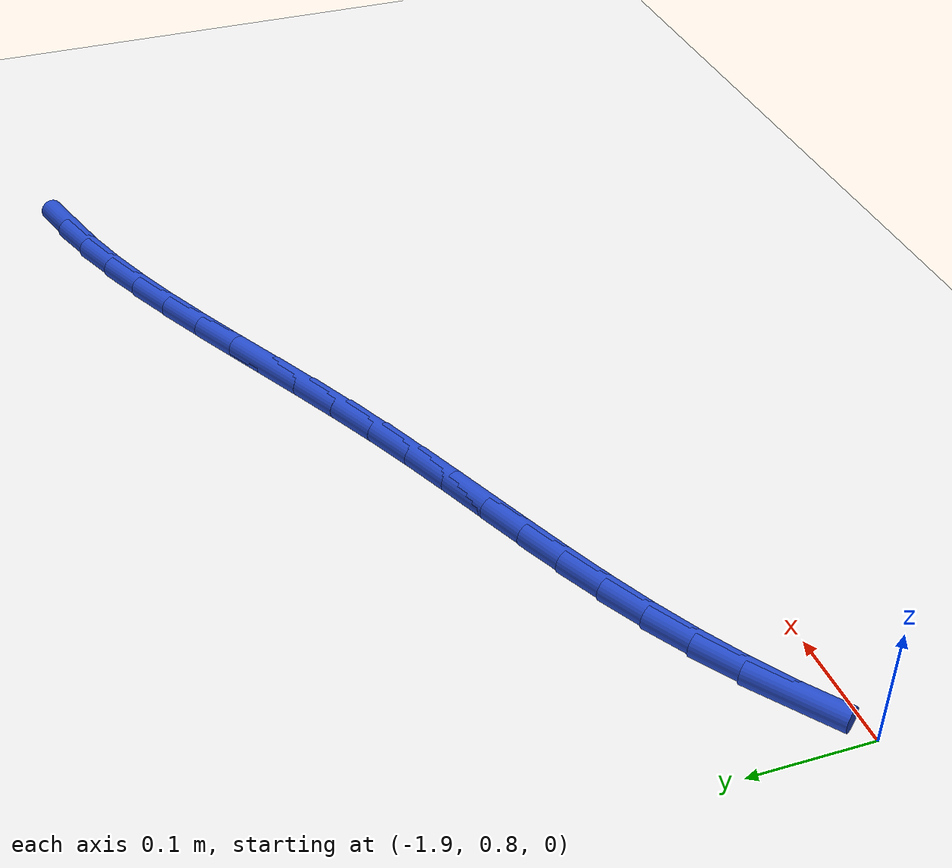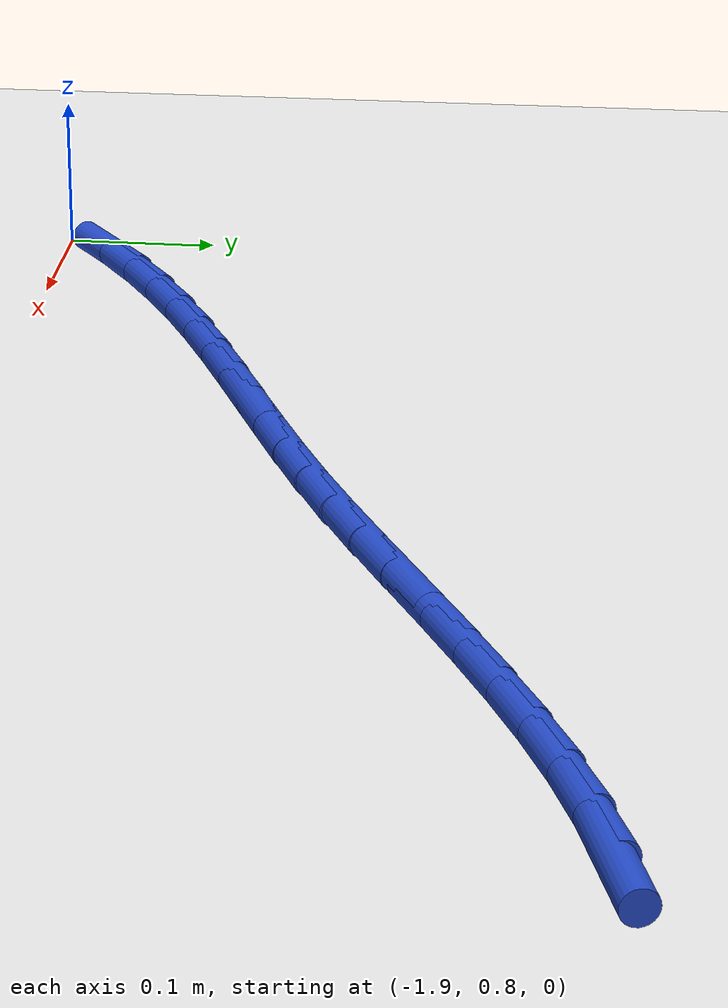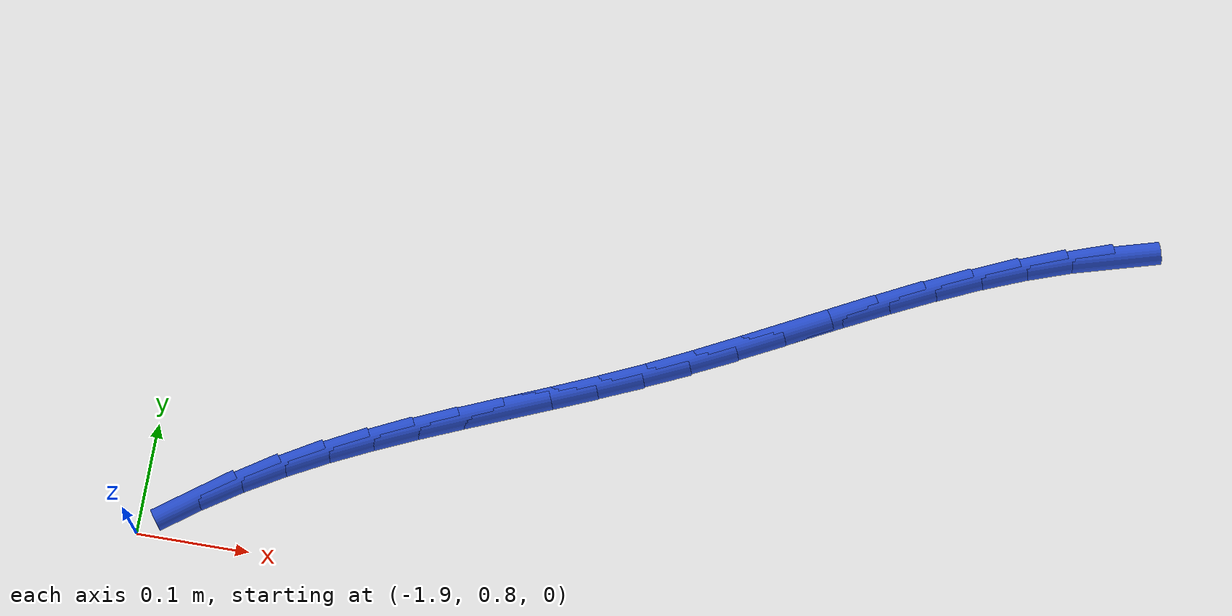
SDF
<sdf version="1.6">
 <world name="default">
  <model name="ground_plane">
   <static>1</static>
   <link name="link">
    <collision name="collision">
     <geometry><plane><normal>0 0 1</normal><size>100 100</size></plane></geometry>
     <surface><friction><ode><mu>100</mu><mu2>50</mu2></ode></friction></surface>
    </collision>
    <visual name="visual">
     <cast_shadows>0</cast_shadows>
     <geometry><plane><normal>0 0 1</normal><size>100 100</size></plane></geometry>
     <material>
      <script><uri>file://media/materials/scripts/gazebo.material</uri><name>Gazebo/WhiteGlow</name></script>
     </material>
    </visual>
   </link>
  </model>
  <model name="line">
   <link name="link_43">
    <pose>-1.0897689102322456 1.188015829185128 0.01 0 1.57 0.27014667882515564</pose>
    <collision name="collision">
     <geometry><cylinder><radius>0.01</radius><length>0.08</length></cylinder></geometry>
    </collision>
    <visual name="visual">
     <material>
      <script><name>Gazebo/Blue</name><uri>file://media/materials/scripts/gazebo.material</uri></script>
     </material>
     <geometry><cylinder><radius>0.01</radius><length>0.08</length></cylinder></geometry>
    </visual>
   </link>
   <link name="link_44">
    <pose>-1.1289754488203216 1.1771589091504442 0.01 0 1.57 0.33185288801770346</pose>
    <collision name="collision">
     <geometry><cylinder><radius>0.01</radius><length>0.08</length></cylinder></geometry>
    </collision>
    <visual name="visual">
     <material>
      <script><name>Gazebo/Blue</name><uri>file://media/materials/scripts/gazebo.material</uri></script>
     </material>
     <geometry><cylinder><radius>0.01</radius><length>0.08</length></cylinder></geometry>
    </visual>
   </link>
   <link name="link_45">
    <pose>-1.1683768165419062 1.1635813373308075 0.01 0 1.57 0.3809390599780705</pose>
    <collision name="collision">
     <geometry><cylinder><radius>0.01</radius><length>0.08</length></cylinder></geometry>
    </collision>
    <visual name="visual">
     <material>
      <script><name>Gazebo/Blue</name><uri>file://media/materials/scripts/gazebo.material</uri></script>
     </material>
     <geometry><cylinder><radius>0.01</radius><length>0.08</length></cylinder></geometry>
    </visual>
   </link>
   <link name="link_46">
    <pose>-1.2079223011146543 1.1477432917064916 0.01 0 1.57 0.41866784693471476</pose>
    <collision name="collision">
     <geometry><cylinder><radius>0.01</radius><length>0.08</length></cylinder></geometry>
    </collision>
    <visual name="visual">
     <material>
      <script><name>Gazebo/Blue</name><uri>file://media/materials/scripts/gazebo.material</uri></script>
     </material>
     <geometry><cylinder><radius>0.01</radius><length>0.08</length></cylinder></geometry>
    </visual>
   </link>
   <link name="link_47">
    <pose>-1.2475611902562231 1.1301049502577696 0.01 0 1.57 0.4461119407529195</pose>
    <collision name="collision">
     <geometry><cylinder><radius>0.01</radius><length>0.08</length></cylinder></geometry>
    </collision>
    <visual name="visual">
     <material>
      <script><name>Gazebo/Blue</name><uri>file://media/materials/scripts/gazebo.material</uri></script>
     </material>
     <geometry><cylinder><radius>0.01</radius><length>0.08</length></cylinder></geometry>
    </visual>
   </link>
   <link name="link_48">
    <pose>-1.2872427716842665 1.1111264909649146 0.01 0 1.57 0.4640834403702183</pose>
    <collision name="collision">
     <geometry><cylinder><radius>0.01</radius><length>0.08</length></cylinder></geometry>
    </collision>
    <visual name="visual">
     <material>
      <script><name>Gazebo/Blue</name><uri>file://media/materials/scripts/gazebo.material</uri></script>
     </material>
     <geometry><cylinder><radius>0.01</radius><length>0.08</length></cylinder></geometry>
    </visual>
   </link>
   <link name="link_49">
    <pose>-1.3269163331164417 1.0912680918082003 0.01 0 1.57 0.4731088236087587</pose>
    <collision name="collision">
     <geometry><cylinder><radius>0.01</radius><length>0.08</length></cylinder></geometry>
    </collision>
    <visual name="visual">
     <material>
      <script><name>Gazebo/Blue</name><uri>file://media/materials/scripts/gazebo.material</uri></script>
     </material>
     <geometry><cylinder><radius>0.01</radius><length>0.08</length></cylinder></geometry>
    </visual>
   </link>
   <link name="link_50">
    <pose>-1.3665311622704044 1.0709899307678994 0.01 0 1.57 0.47342180470693307</pose>
    <collision name="collision">
     <geometry><cylinder><radius>0.01</radius><length>0.08</length></cylinder></geometry>
    </collision>
    <visual name="visual">
     <material>
      <script><name>Gazebo/Blue</name><uri>file://media/materials/scripts/gazebo.material</uri></script>
     </material>
     <geometry><cylinder><radius>0.01</radius><length>0.08</length></cylinder></geometry>
    </visual>
   </link>
   <link name="link_51">
    <pose>-1.4060365468638103 1.0507521858242859 0.01 0 1.57 0.4649589678113812</pose>
    <collision name="collision">
     <geometry><cylinder><radius>0.01</radius><length>0.08</length></cylinder></geometry>
    </collision>
    <visual name="visual">
     <material>
      <script><name>Gazebo/Blue</name><uri>file://media/materials/scripts/gazebo.material</uri></script>
     </material>
     <geometry><cylinder><radius>0.01</radius><length>0.08</length></cylinder></geometry>
    </visual>
   </link>
   <link name="link_52">
    <pose>-1.4453817746143154 1.0310150349576324 0.01 0 1.57 0.4473514635742701</pose>
    <collision name="collision">
     <geometry><cylinder><radius>0.01</radius><length>0.08</length></cylinder></geometry>
    </collision>
    <visual name="visual">
     <material>
      <script><name>Gazebo/Blue</name><uri>file://media/materials/scripts/gazebo.material</uri></script>
     </material>
     <geometry><cylinder><radius>0.01</radius><length>0.08</length></cylinder></geometry>
    </visual>
   </link>
   <link name="link_53">
    <pose>-1.484516133239575 1.012238656148213 0.01 0 1.57 0.4225645913503844</pose>
    <collision name="collision">
     <geometry><cylinder><radius>0.01</radius><length>0.08</length></cylinder></geometry>
    </collision>
    <visual name="visual">
     <material>
      <script><name>Gazebo/Blue</name><uri>file://media/materials/scripts/gazebo.material</uri></script>
     </material>
     <geometry><cylinder><radius>0.01</radius><length>0.08</length></cylinder></geometry>
    </visual>
   </link>
   <link name="link_54">
    <pose>-1.5233888172710885 0.9947594713552501 0.01 0 1.57 0.4026322766483738</pose>
    <collision name="collision">
     <geometry><cylinder><radius>0.01</radius><length>0.08</length></cylinder></geometry>
    </collision>
    <visual name="visual">
     <material>
      <script><name>Gazebo/Blue</name><uri>file://media/materials/scripts/gazebo.material</uri></script>
     </material>
     <geometry><cylinder><radius>0.01</radius><length>0.08</length></cylinder></geometry>
    </visual>
   </link>
   <link name="link_55">
    <pose>-1.5619485867562162 0.978336885204129 0.01 0 1.57 0.3916602115343521</pose>
    <collision name="collision">
     <geometry><cylinder><radius>0.01</radius><length>0.08</length></cylinder></geometry>
    </collision>
    <visual name="visual">
     <material>
      <script><name>Gazebo/Blue</name><uri>file://media/materials/scripts/gazebo.material</uri></script>
     </material>
     <geometry><cylinder><radius>0.01</radius><length>0.08</length></cylinder></geometry>
    </visual>
   </link>
   <link name="link_56">
    <pose>-1.600144075212409 0.9625622640762735 0.01 0 1.57 0.3901295040325442</pose>
    <collision name="collision">
     <geometry><cylinder><radius>0.01</radius><length>0.08</length></cylinder></geometry>
    </collision>
    <visual name="visual">
     <material>
      <script><name>Gazebo/Blue</name><uri>file://media/materials/scripts/gazebo.material</uri></script>
     </material>
     <geometry><cylinder><radius>0.01</radius><length>0.08</length></cylinder></geometry>
    </visual>
   </link>
   <link name="link_57">
    <pose>-1.6379239161426447 0.9470269551311683 0.01 0 1.57 0.3983855232881524</pose>
    <collision name="collision">
     <geometry><cylinder><radius>0.01</radius><length>0.08</length></cylinder></geometry>
    </collision>
    <visual name="visual">
     <material>
      <script><name>Gazebo/Blue</name><uri>file://media/materials/scripts/gazebo.material</uri></script>
     </material>
     <geometry><cylinder><radius>0.01</radius><length>0.08</length></cylinder></geometry>
    </visual>
   </link>
   <link name="link_58">
    <pose>-1.6752367430498998 0.9313223055282979 0.01 0 1.57 0.41662446041100765</pose>
    <collision name="collision">
     <geometry><cylinder><radius>0.01</radius><length>0.08</length></cylinder></geometry>
    </collision>
    <visual name="visual">
     <material>
      <script><name>Gazebo/Blue</name><uri>file://media/materials/scripts/gazebo.material</uri></script>
     </material>
     <geometry><cylinder><radius>0.01</radius><length>0.08</length></cylinder></geometry>
    </visual>
   </link>
   <link name="link_59">
    <pose>-1.7120311894371512 0.9150396624271475 0.01 0 1.57 0.4448564066520664</pose>
    <collision name="collision">
     <geometry><cylinder><radius>0.01</radius><length>0.08</length></cylinder></geometry>
    </collision>
    <visual name="visual">
     <material>
      <script><name>Gazebo/Blue</name><uri>file://media/materials/scripts/gazebo.material</uri></script>
     </material>
     <geometry><cylinder><radius>0.01</radius><length>0.08</length></cylinder></geometry>
    </visual>
   </link>
   <link name="link_60">
    <pose>-1.748255888807376 0.8977703729872021 0.01 0 1.57 0.4828458462337701</pose>
    <collision name="collision">
     <geometry><cylinder><radius>0.01</radius><length>0.08</length></cylinder></geometry>
    </collision>
    <visual name="visual">
     <material>
      <script><name>Gazebo/Blue</name><uri>file://media/materials/scripts/gazebo.material</uri></script>
     </material>
     <geometry><cylinder><radius>0.01</radius><length>0.08</length></cylinder></geometry>
    </visual>
   </link>
   <link name="link_61">
    <pose>-1.7838594746635525 0.8791057843679462 0.01 0 1.57 0.5296391153219574</pose>
    <collision name="collision">
     <geometry><cylinder><radius>0.01</radius><length>0.08</length></cylinder></geometry>
    </collision>
    <visual name="visual">
     <material>
      <script><name>Gazebo/Blue</name><uri>file://media/materials/scripts/gazebo.material</uri></script>
     </material>
     <geometry><cylinder><radius>0.01</radius><length>0.08</length></cylinder></geometry>
    </visual>
   </link>
   <link name="link_62">
    <pose>-1.8187814134386782 0.8586613520640249 0.01 0 1.57 0.5806577844997015</pose>
    <collision name="collision">
     <geometry><cylinder><radius>0.01</radius><length>0.08</length></cylinder></geometry>
    </collision>
    <visual name="visual">
     <material>
      <script><name>Gazebo/Blue</name><uri>file://media/materials/scripts/gazebo.material</uri></script>
     </material>
     <geometry><cylinder><radius>0.01</radius><length>0.08</length></cylinder></geometry>
    </visual>
   </link>
   <link name="link_63">
    <pose>-1.8528683677417281 0.8362965949075618 0.01 0 1.57 0.6337509216848514</pose>
    <collision name="collision">
     <geometry><cylinder><radius>0.01</radius><length>0.08</length></cylinder></geometry>
    </collision>
    <visual name="visual">
     <material>
      <script><name>Gazebo/Blue</name><uri>file://media/materials/scripts/gazebo.material</uri></script>
     </material>
     <geometry><cylinder><radius>0.01</radius><length>0.08</length></cylinder></geometry>
    </visual>
   </link>
  </model>
 </world>
</sdf>
